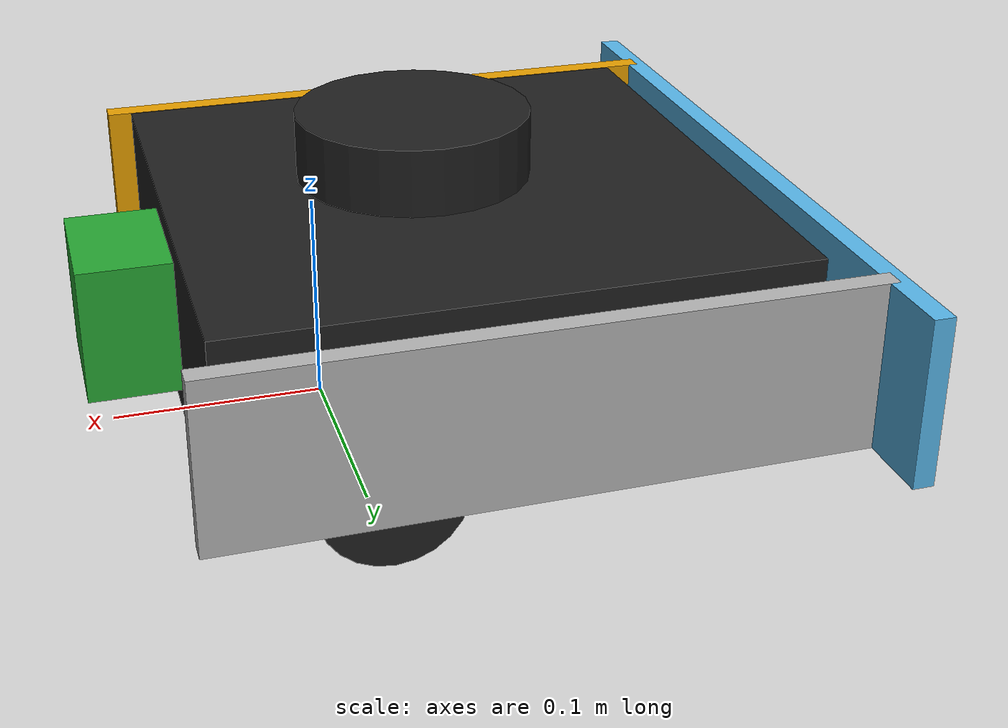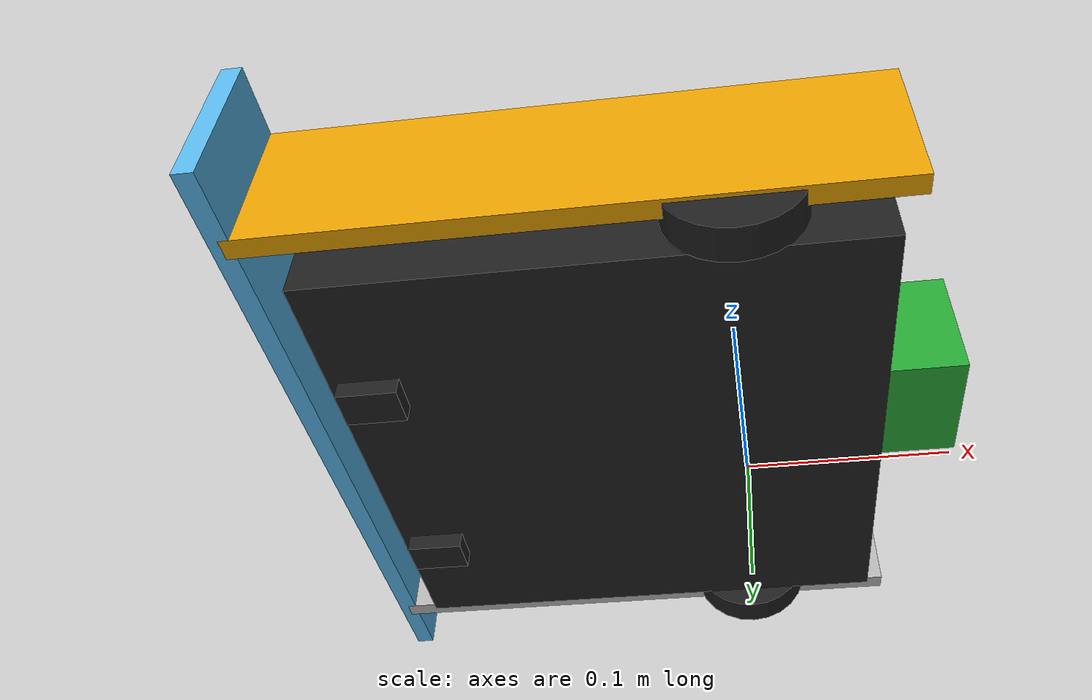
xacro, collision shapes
<?xml version="1.0" ?>
<robot name="turtlebot3_waffle" xmlns:xacro="http://ros.org/wiki/xacro">
  <xacro:include filename="$(find mybot_description)/urdf/turtlebot/common_properties.xacro"/>
  <xacro:include filename="$(find mybot_description)/urdf/turtlebot/turtlebot3_waffle.gazebo.xacro"/>

   <xacro:property name="arm_mount_height" value="0.05" />
   <xacro:property name="arm_len" value="0.3" />
   <xacro:property name="arm_width" value="0.08" />
   <xacro:property name="arm_thick" value="0.01" />
   <xacro:property name="arm_dist" value="0.3" />
   <xacro:property name="camera_size" value="${arm_width*0.8}"/>
   <xacro:property name="default_mas" value="0.005" />

  <link name="base_footprint"/>

  <joint name="base_joint" type="fixed">
    <parent link="base_footprint"/>
    <child link="base_link" />
    <origin xyz="0 0 0.010" rpy="0 0 0"/>
  </joint>

  <link name="base_link">
    <visual>
      <origin xyz="-0.064 0 0.0" rpy="0 0 0"/>
      <geometry>
        <mesh filename="package://mybot_description/meshes/bases/waffle_base.stl" scale="0.001 0.001 0.001"/>
      </geometry>
      <material name="light_black"/>
    </visual>

    <collision>
      <origin xyz="-0.064 0 0.047" rpy="0 0 0"/>
      <geometry>
        <box size="0.266 0.266 0.094"/>
      </geometry>
    </collision>

    <inertial>
      <origin xyz="0 0 0" rpy="0 0 0"/>
      <mass value="1.3729096e+00"/>
      <inertia ixx="8.7002718e-03" ixy="-4.7576583e-05" ixz="1.1160499e-04"
               iyy="8.6195418e-03" iyz="-3.5422299e-06"
               izz="1.4612727e-02" />
    </inertial>
  </link>

  <joint name="wheel_left_joint" type="continuous">
    <parent link="base_link"/>
    <child link="wheel_left_link"/>
    <origin xyz="0.0 0.144 0.023" rpy="-1.57 0 0"/>
    <axis xyz="0 0 1"/>
  </joint>

  <link name="wheel_left_link">
    <visual>
      <origin xyz="0 0 0" rpy="1.57 0 0"/>
      <geometry>
        <mesh filename="package://mybot_description/meshes/wheels/left_tire.stl" scale="0.001 0.001 0.001"/>
      </geometry>
      <material name="dark"/>
    </visual>

    <collision>
      <origin xyz="0 0 0" rpy="0 0 0"/>
      <geometry>
        <cylinder length="0.018" radius="0.033"/>
      </geometry>
    </collision>

    <inertial>
      <origin xyz="0 0 0" />
      <mass value="2.8498940e-02" />
      <inertia ixx="1.1175580e-05" ixy="-4.2369783e-11" ixz="-5.9381719e-09"
               iyy="1.1192413e-05" iyz="-1.4400107e-11"
               izz="2.0712558e-05" />
      </inertial>
  </link>

  <joint name="wheel_right_joint" type="continuous">
    <parent link="base_link"/>
    <child link="wheel_right_link"/>
    <origin xyz="0.0 -0.144 0.023" rpy="-1.57 0 0"/>
    <axis xyz="0 0 1"/>
  </joint>

  <link name="wheel_right_link">
    <visual>
      <origin xyz="0 0 0" rpy="1.57 0 0"/>
      <geometry>
        <mesh filename="package://mybot_description/meshes/wheels/right_tire.stl" scale="0.001 0.001 0.001"/>
      </geometry>
      <material name="dark"/>
    </visual>

    <collision>
      <origin xyz="0 0 0" rpy="0 0 0"/>
      <geometry>
        <cylinder length="0.018" radius="0.033"/>
      </geometry>
    </collision>

    <inertial>
      <origin xyz="0 0 0" />
      <mass value="2.8498940e-02" />
      <inertia ixx="1.1175580e-05" ixy="-4.2369783e-11" ixz="-5.9381719e-09"
               iyy="1.1192413e-05" iyz="-1.4400107e-11"
               izz="2.0712558e-05" />
      </inertial>
  </link>

  <joint name="caster_back_right_joint" type="fixed">
    <parent link="base_link"/>
    <child link="caster_back_right_link"/>
    <origin xyz="-0.177 -0.064 -0.004" rpy="-1.57 0 0"/>
  </joint>

  <link name="caster_back_right_link">
    <collision>
      <origin xyz="0 0.001 0" rpy="0 0 0"/>
      <geometry>
        <box size="0.030 0.009 0.020"/>
      </geometry>
    </collision>

    <inertial>
      <origin xyz="0 0 0" />
      <mass value="0.005" />
      <inertia ixx="0.001" ixy="0.0" ixz="0.0"
               iyy="0.001" iyz="0.0"
               izz="0.001" />
    </inertial>
  </link>

  <joint name="caster_back_left_joint" type="fixed">
    <parent link="base_link"/>
    <child link="caster_back_left_link"/>
    <origin xyz="-0.177 0.064 -0.004" rpy="-1.57 0 0"/>
  </joint>

  <link name="caster_back_left_link">
    <collision>
      <origin xyz="0 0.001 0" rpy="0 0 0"/>
      <geometry>
        <box size="0.030 0.009 0.020"/>
      </geometry>
    </collision>

    <inertial>
      <origin xyz="0 0 0" />
      <mass value="0.005" />
      <inertia ixx="0.001" ixy="0.0" ixz="0.0"
               iyy="0.001" iyz="0.0"
               izz="0.001" />
    </inertial>
  </link>

  <joint name="scan_joint" type="fixed">
    <parent link="base_link"/>
    <child link="base_scan"/>
    <origin xyz="-0.064 0 0.122" rpy="0 0 0"/>
  </joint>

  <link name="base_scan">
    <visual>
      <origin xyz="0 0 0" rpy="0 0 0"/>
      <geometry>
        <mesh filename="package://mybot_description/meshes/sensors/lds.stl" scale="0.001 0.001 0.001"/>
      </geometry>
      <material name="dark"/>
    </visual>

    <collision>
      <origin xyz="0.015 0 -0.0065" rpy="0 0 0"/>
      <geometry>
        <cylinder length="0.0315" radius="0.055"/>
      </geometry>
    </collision>

    <inertial>
      <mass value="0.114" />
      <origin xyz="0 0 0" />
      <inertia ixx="0.001" ixy="0.0" ixz="0.0"
               iyy="0.001" iyz="0.0"
               izz="0.001" />
    </inertial>
  </link>

<!-- ********right arm***********-->
<joint name="base_to_right_arm" type="prismatic">
    <parent link="base_link"/>
    <child link="right_arm"/>
    <origin xyz="${0.08} ${arm_dist*0.5} ${arm_mount_height}" rpy="0 0 0"/>
     <axis xyz="1 0 0"/>
    <limit effort="100.0" lower="-0.28" upper="0.0" velocity="0.1"/>
  </joint>

  <link name="right_arm">
    <visual>
      <origin xyz="${-arm_len*0.5} 0 0" rpy="0 0 0"/>
      <geometry>
	<box size="${arm_len} ${arm_thick} ${arm_width}"/>
      </geometry>
      <material name="dark"/>
    </visual>

     <collision>
      <origin xyz="${-arm_len*0.5} 0 0" rpy="0 0 0"/>
      <geometry>
	<box size="${arm_len} ${arm_thick} ${arm_width}"/>
      </geometry>
    </collision>

    <inertial>
      <mass value="${default_mas}" />
      <inertia ixx="1.1175580e-05" ixy="-4.2369783e-11" ixz="-5.9381719e-09"
               iyy="1.1192413e-05" iyz="-1.4400107e-11"
               izz="2.0712558e-05" />
      </inertial>
  </link>

<!--********left arm*******-->
<joint name="base_to_left_arm" type="fixed">
    <parent link="right_arm"/>
    <child link="left_arm"/>
    <origin xyz="0.0 ${-arm_dist} 0.0" rpy="0 0 0"/>
    <axis xyz="0 0 1"/>
  </joint>

  <link name="left_arm">
    <visual>
      <origin xyz="${-arm_len*0.5} 0 0" rpy="0 0 0"/>
      <geometry>
	<box size="${arm_len} ${arm_thick} ${arm_width}"/>
      </geometry>
      <material name="dark"/>
    </visual>

    <collision>
      <origin xyz="${-arm_len*0.5} 0 0" rpy="0 0 0"/>
      <geometry>
	<box size="${arm_len} ${arm_thick} ${arm_width}"/>
      </geometry>
    </collision>

    <inertial>
      <mass value="${default_mas}" />
      <inertia ixx="1.1175580e-05" ixy="-4.2369783e-11" ixz="-5.9381719e-09"
               iyy="1.1192413e-05" iyz="-1.4400107e-11"
               izz="2.0712558e-05" />
      </inertial>
  </link>

<!--*********cross bar********-->
<joint name="right_arm_to_crossbar" type="revolute">
    <parent link="right_arm"/>
    <child link="crossbar"/>
    <axis xyz="-1 0 0"/>
    <limit effort="100.0" lower="0.0" upper="3.14" velocity="0.1"/>
    <origin xyz="${-arm_len} 0 0" rpy="0 0 0"/>
  </joint>

  <link name="crossbar">
    <visual>
      <origin xyz="0 ${-arm_dist*0.5} 0" rpy="0 0 0"/>
      <geometry>
	<box size="${arm_thick} ${arm_dist + arm_width} ${arm_width}"/>
      </geometry>
      <material name="dark"/>
    </visual>

    <collision>
      <origin xyz="0 ${-arm_dist*0.5} 0" rpy="0 0 0"/>
      <geometry>
	<box size="${arm_thick} ${arm_dist + arm_width} ${arm_width}"/>
      </geometry>
    </collision>

    <inertial>
      <mass value="${default_mas}" />
      <inertia ixx="1.1175580e-05" ixy="-4.2369783e-11" ixz="-5.9381719e-09"
               iyy="1.1192413e-05" iyz="-1.4400107e-11"
               izz="2.0712558e-05" />
      </inertial>
  </link>

<!-- **********************camera *************** -->

 <joint name="camera_joint" type="fixed">
    <axis xyz="0 1 0" />
    <origin xyz="0.08 0 0.05" rpy="0 0 0"/>
    <parent link="base_link"/>
    <child link="camera"/>
  </joint>

 <link name="camera">
    <collision>
      <origin xyz="0 0 0" rpy="0 0 0"/>
      <geometry>
        <box size="${camera_size} ${camera_size} ${camera_size}"/>
      </geometry>
    </collision>

    <visual>
      <origin xyz="0 0 0" rpy="0 0 0"/>
      <geometry>
        <box size="${camera_size} ${camera_size} ${camera_size}"/>
      </geometry>
      <material name="green"/>
    </visual>

    <inertial>
      <origin xyz="0 0 0" />
      <mass value="${default_mas}" />
      <inertia ixx="1.1175580e-05" ixy="-4.2369783e-11" ixz="-5.9381719e-09"
               iyy="1.1192413e-05" iyz="-1.4400107e-11"
               izz="2.0712558e-05" />
      </inertial>
  </link>

<transmission name="crossbar_trans">
    <type>transmission_interface/SimpleTransmission</type>
    <actuator name="crossbar_motor">
    <hardwareInterface>EffortJointInterface</hardwareInterface>
      <mechanicalReduction>1</mechanicalReduction>
    </actuator>
    <joint name="right_arm_to_crossbar">
    <hardwareInterface>EffortJointInterface</hardwareInterface>
    </joint>
  </transmission>

<transmission name="arm_trans">
    <type>transmission_interface/SimpleTransmission</type>
    <actuator name="arm_motor">
    <hardwareInterface>EffortJointInterface</hardwareInterface>
      <mechanicalReduction>1</mechanicalReduction>
    </actuator>
    <joint name="base_to_right_arm">
    <hardwareInterface>EffortJointInterface</hardwareInterface>
    </joint>
  </transmission>

<gazebo>
    <plugin name="gazebo_ros_control" filename="libgazebo_ros_control.so">
      <robotNamespace>/mybot</robotNamespace>
 	<legacyModeNS>1</legacyModeNS>
    <robotSimType>gazebo_ros_control/DefaultRobotHWSim</robotSimType>
    </plugin>
  </gazebo>

</robot>
